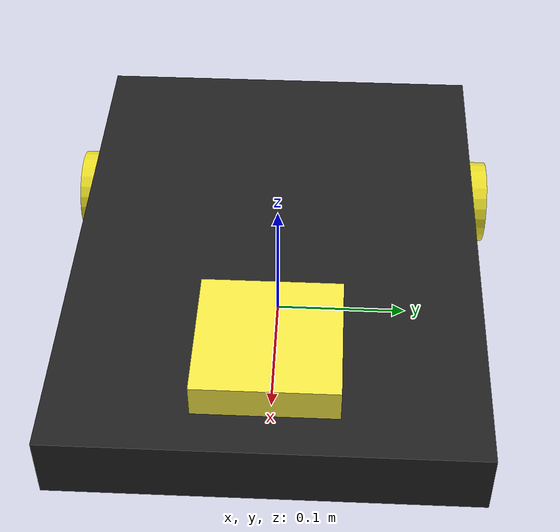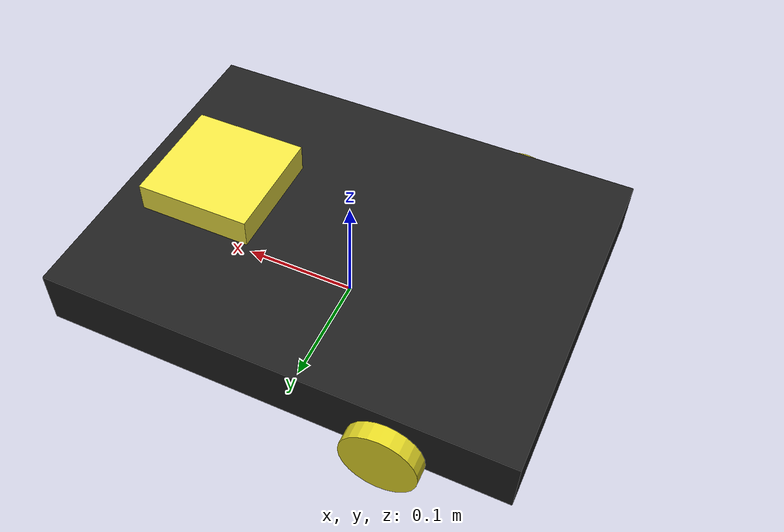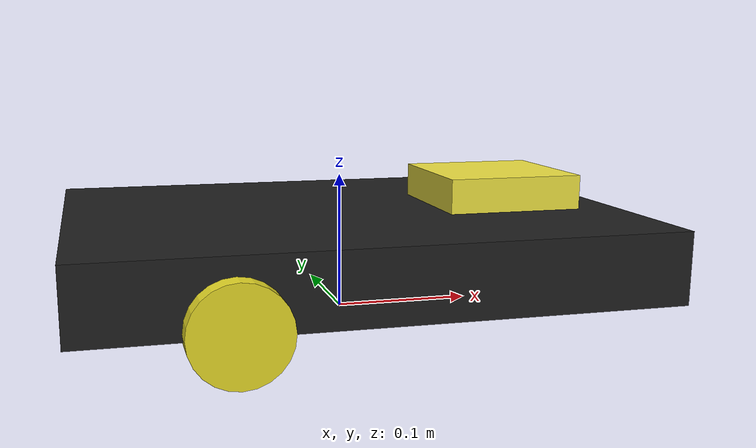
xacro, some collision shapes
<?xml version='1.0'?>

<robot name="Robot_description" xmlns:xacro="http://www.ros.org/wiki/xacro">

  <xacro:include filename="$(find Robot_description)/urdf/Robot_description.gazebo" />

  <link name='base_footprint'>
    <pose>0 0 0 0 0 0</pose>

    <inertial>
      <mass value="15.0"/>
      <origin xyz="0 0 0.05" rpy=" 0 0 0"/>
      <inertia
          ixx="0.1" ixy="0" ixz="0"
          iyy="0.1" iyz="0"
          izz="0.1"
      />
    </inertial>

    <collision name='collision'>
      <origin xyz="0 0 0.05" rpy=" 0 0 0"/>
      <geometry>
        <box size=".4 .3 .05"/>
      </geometry>
    </collision>

    <visual name='chassis_visual'>
      <origin xyz="0 0 0.05" rpy=" 0 0 0"/>
      <geometry>
        <box size=".4 .3 .05"/>
      </geometry>
    </visual>

    <collision name='caster_collision'>
      <origin xyz="0.15 0 0.03" rpy=" 0 0 0"/>
      <geometry>
        <sphere radius="0.03"/>
      </geometry>
    </collision>

    <visual name='caster_visual'>
      <origin xyz="0.15 0 0.03" rpy=" 0 0 0"/>
      <geometry>
        <sphere radius="0.03"/>
      </geometry>
    </visual>

  </link>

  <!-- Add link left Wheel -->
  <link name='left_wheel'>
     <inertial>
      <mass value="5"/>
      <origin xyz="-0.05 0 0.015" rpy=" 0 1.5707 1.5707"/>
      <inertia
	  ixx="0.1" ixy="0" ixz="0"
	  iyy="0.1" iyz="0"
	  izz="0.1"
      />
     </inertial>

     <collision>
      <origin xyz="-0.05 0 0.015" rpy=" 0 1.5707 1.5707"/>
      <geometry>
	<cylinder radius="0.0325" length="0.03"/>
      </geometry>
     </collision>

     <visual>
      <origin xyz="-0.05 0 0.015" rpy=" 0 1.5707 1.5707"/>
      <geometry>
	<cylinder radius="0.0325" length="0.03"/>
      </geometry>
     </visual>
  </link>

  <!-- Add link right Wheel -->
  <link name='right_wheel'>
     <inertial>
      <mass value="5"/>
      <origin xyz="-0.05 0 0.015" rpy=" 0 1.5707 1.5707"/>
      <inertia
	  ixx="0.1" ixy="0" ixz="0"
	  iyy="0.1" iyz="0"
	  izz="0.1"
      />
     </inertial>

     <collision>
      <origin xyz="-0.05 0 0.015" rpy=" 0 1.5707 1.5707"/>
      <geometry>
	<cylinder radius="0.0325" length="0.03"/>
      </geometry>
     </collision>

     <visual>
      <origin xyz="-0.05 0 0.015" rpy=" 0 1.5707 1.5707"/>
      <geometry>
	<cylinder radius="0.0325" length="0.03"/>
      </geometry>
     </visual>
  </link>

  <!-- Add joint left wheel -->
  <joint type="continuous" name="left_wheel_hinge">

    <origin xyz="-0.05 0.15 0.015" rpy="0 0 0"/>

    <child link="left_wheel"/>

    <parent link="base_footprint"/>

    <axis xyz="0 1 0" rpy="0 0 0"/>

    <limit effort="10000" velocity="1000"/>

    <dynamics damping="1.0" friction="1.0"/>

  </joint>

  <!-- Add joint right wheel -->
  <joint type="continuous" name="right_wheel_hinge">

    <origin xyz="-0.05 -0.15 0.015" rpy="0 0 0"/>

    <child link="right_wheel"/>

    <parent link="base_footprint"/>

    <axis xyz="0 1 0" rpy="0 0 0"/>

    <limit effort="10000" velocity="1000"/>

    <dynamics damping="1.0" friction="1.0"/>

  </joint>

  <!--kinect joint /-->

  <joint name="kinect_joint" type="fixed">

    <origin xyz="0.12 0 .05" rpy="0 0 0"/>

    <parent link="base_footprint"/>
    <child link="camera_link"/>

  </joint>

  <!--Kinect  Link /-->

  <link name="camera_link">

  <visual>

      <origin xyz="0 0 0.05" rpy="0 0 0"/>

      <geometry>

      <mesh filename="package://Robot_description/meshes/kinect.dae"/>

      </geometry>

   </visual>

   <collision>
    <origin xyz="0 0 0" rpy="0 0 0"/>

    <geometry>
    <box size="0.1 0.1 0.1"/>
    </geometry>

   </collision>

   <inertial>
     <mass value="1e-5" />
     <origin xyz="0 0 0" rpy="0 0 0"/>
     <inertia ixx="1e-6" ixy="0" ixz="0" iyy="1e-6" iyz="0" izz="1e-6" />
   </inertial>
  </link>

  <!--  Kinect Optical Link and joints   /-->

  <joint name="kinect_optical_joint" type="fixed">

    <origin xyz="0 0 0" rpy="-1.5707 0 -1.5707"/> <!-- To invert the coordinates from image convention (Z is forward) to normal xyz /-->
    <parent link="camera_link"/>
    <child link="kinect_optical"/>
  </joint>

  <!--Virtual link to project the images to, and then flip it to us as its joint is flipped  /-->
  <link name="kinect_optical">
  </link>

</robot>
